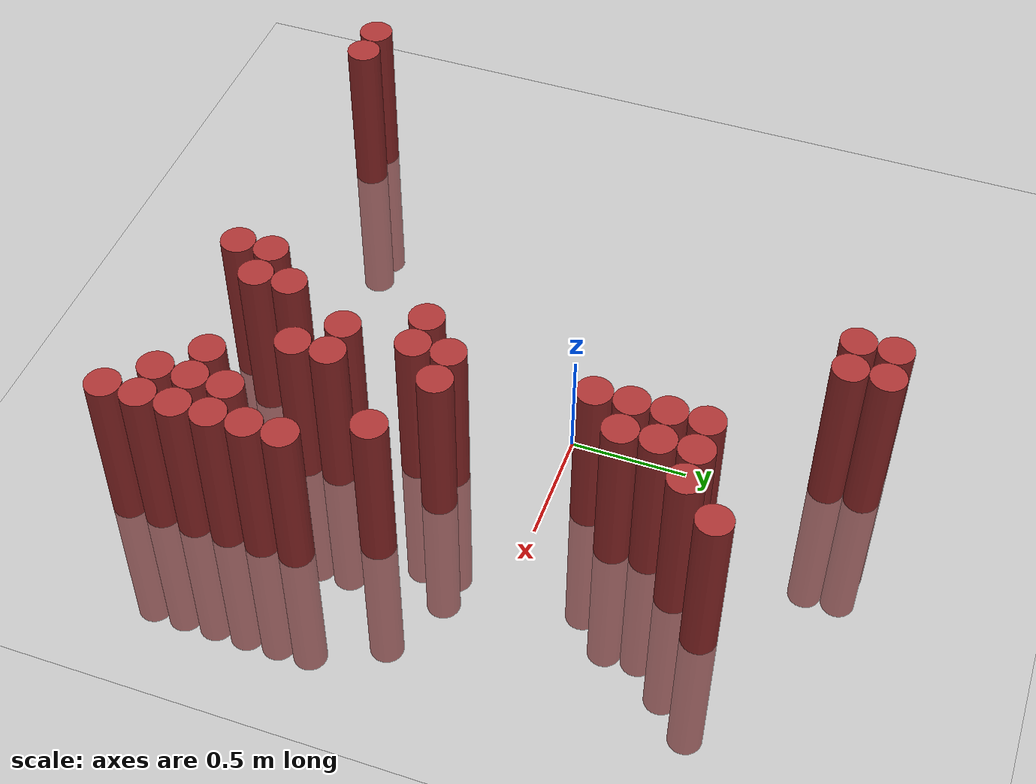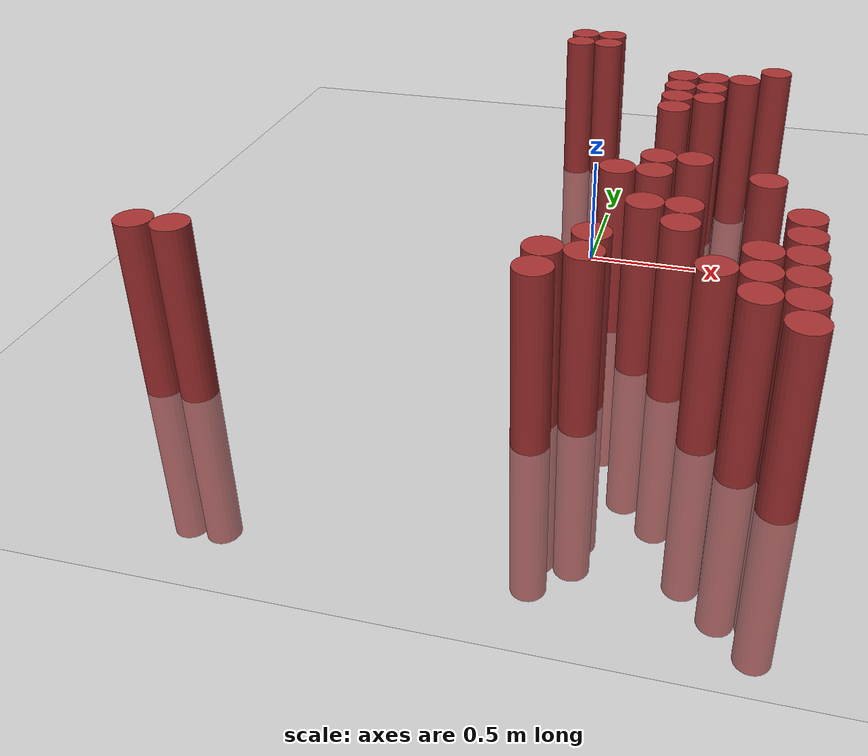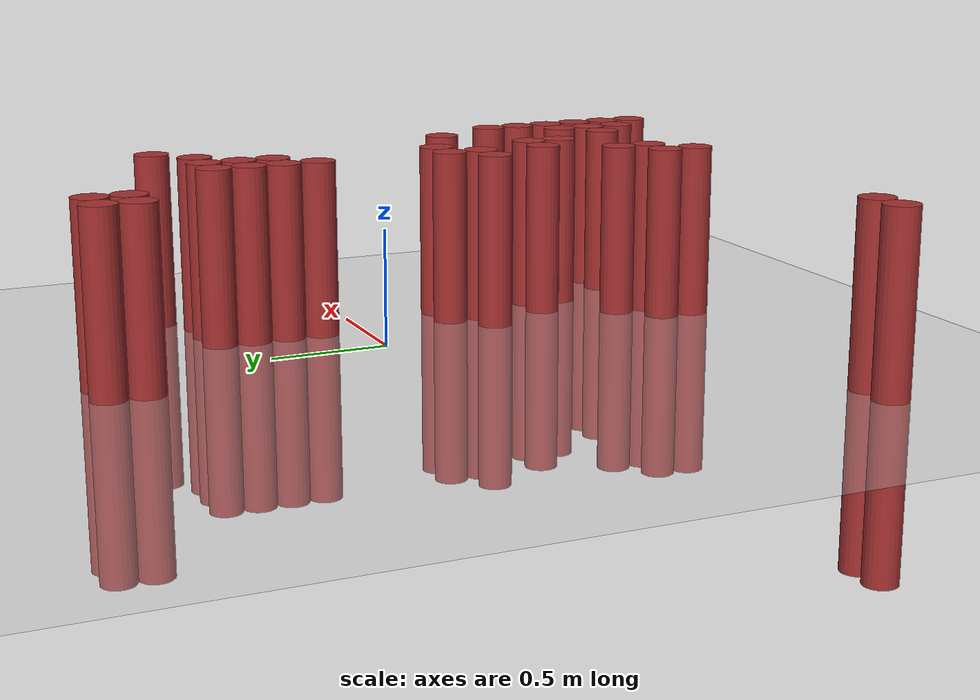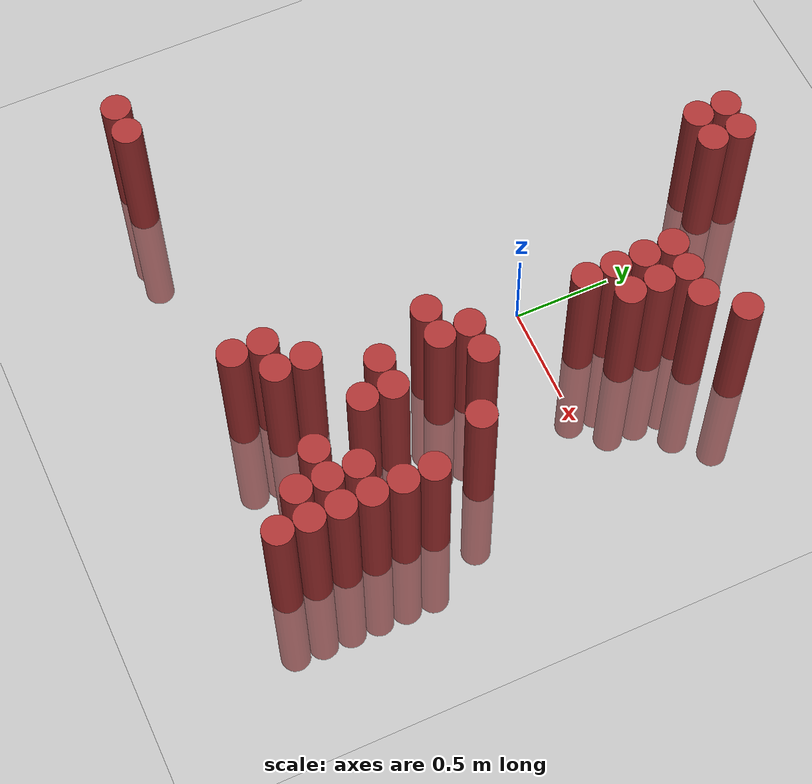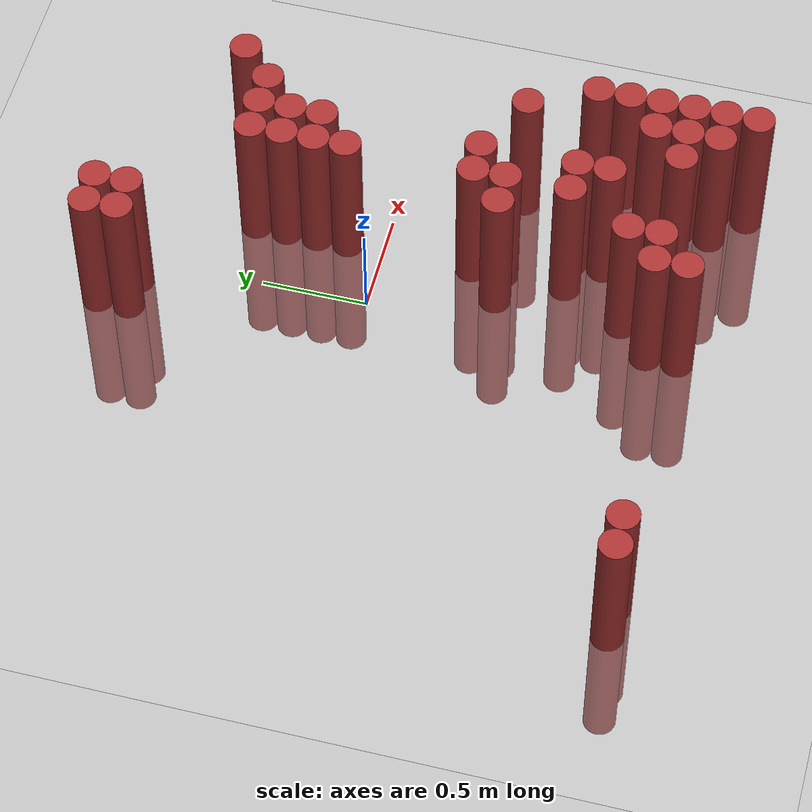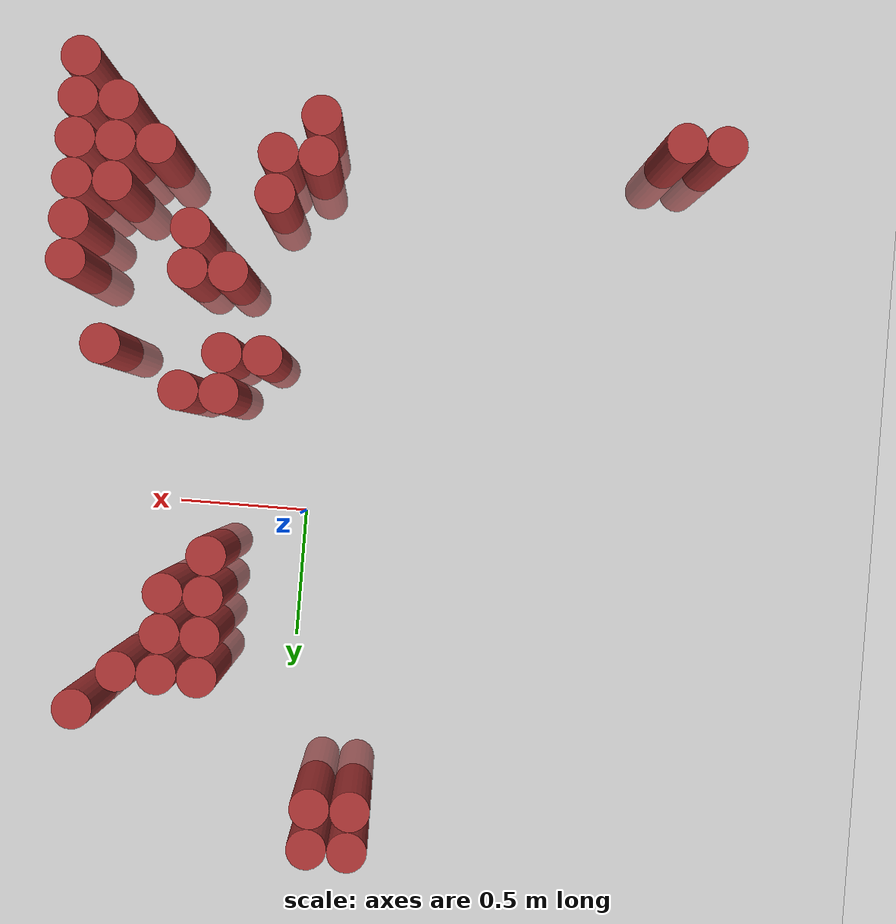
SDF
<sdf version="1.6">
 <world name="default">
  <model name="ground_plane">
   <static>1</static>
   <link name="link">
    <collision name="collision">
     <geometry><plane><normal>0 0 1</normal><size>100 100</size></plane></geometry>
     <surface><friction><ode><mu>100</mu><mu2>50</mu2></ode></friction></surface>
    </collision>
    <visual name="visual">
     <cast_shadows>0</cast_shadows>
     <geometry><plane><normal>0 0 1</normal><size>100 100</size></plane></geometry>
     <material>
      <script><uri>file://media/materials/scripts/gazebo.material</uri><name>Gazebo/Grey</name></script>
     </material>
    </visual>
   </link>
  </model>
  <model name="unit_cylinder_344">
   <static>1</static>
   <pose>-1.475000 -1.475000 0.000000 0.000000 0.000000 0.000000</pose>
   <link name="link">
    <inertial>
     <mass>1</mass>
     <inertia><ixx>0.145833</ixx><ixy>0</ixy><ixz>0</ixz><iyy>0.145833</iyy><iyz>0</iyz><izz>0.125</izz></inertia>
    </inertial>
    <collision name="collision">
     <geometry><cylinder><radius>0.075000</radius><length>1.5</length></cylinder></geometry>
    </collision>
    <visual name="visual">
     <geometry><cylinder><radius>0.075000</radius><length>1.5</length></cylinder></geometry>
     <material>
      <ambient>0.648000 0.192000 0.192000 1</ambient>
      <diffuse>0.648000 0.192000 0.192000 1</diffuse>
     </material>
     <material>
      <script><name>Gazebo/Grey</name><uri>file://media/materials/scripts/gazebo.material</uri></script>
     </material>
    </visual>
   </link>
  </model>
  <model name="unit_cylinder_345">
   <static>1</static>
   <pose>-1.325000 -1.475000 0.000000 0.000000 0.000000 0.000000</pose>
   <link name="link">
    <inertial>
     <mass>1</mass>
     <inertia><ixx>0.145833</ixx><ixy>0</ixy><ixz>0</ixz><iyy>0.145833</iyy><iyz>0</iyz><izz>0.125</izz></inertia>
    </inertial>
    <collision name="collision">
     <geometry><cylinder><radius>0.075000</radius><length>1.5</length></cylinder></geometry>
    </collision>
    <visual name="visual">
     <geometry><cylinder><radius>0.075000</radius><length>1.5</length></cylinder></geometry>
     <material>
      <ambient>0.648000 0.192000 0.192000 1</ambient>
      <diffuse>0.648000 0.192000 0.192000 1</diffuse>
     </material>
     <material>
      <script><name>Gazebo/Grey</name><uri>file://media/materials/scripts/gazebo.material</uri></script>
     </material>
    </visual>
   </link>
  </model>
  <model name="unit_cylinder_356">
   <static>1</static>
   <pose>-0.275000 1.075000 0.000000 0.000000 0.000000 0.000000</pose>
   <link name="link">
    <inertial>
     <mass>1</mass>
     <inertia><ixx>0.145833</ixx><ixy>0</ixy><ixz>0</ixz><iyy>0.145833</iyy><iyz>0</iyz><izz>0.125</izz></inertia>
    </inertial>
    <collision name="collision">
     <geometry><cylinder><radius>0.075000</radius><length>1.5</length></cylinder></geometry>
    </collision>
    <visual name="visual">
     <geometry><cylinder><radius>0.075000</radius><length>1.5</length></cylinder></geometry>
     <material>
      <ambient>0.648000 0.192000 0.192000 1</ambient>
      <diffuse>0.648000 0.192000 0.192000 1</diffuse>
     </material>
     <material>
      <script><name>Gazebo/Grey</name><uri>file://media/materials/scripts/gazebo.material</uri></script>
     </material>
    </visual>
   </link>
  </model>
  <model name="unit_cylinder_357">
   <static>1</static>
   <pose>-0.275000 1.225000 0.000000 0.000000 0.000000 0.000000</pose>
   <link name="link">
    <inertial>
     <mass>1</mass>
     <inertia><ixx>0.145833</ixx><ixy>0</ixy><ixz>0</ixz><iyy>0.145833</iyy><iyz>0</iyz><izz>0.125</izz></inertia>
    </inertial>
    <collision name="collision">
     <geometry><cylinder><radius>0.075000</radius><length>1.5</length></cylinder></geometry>
    </collision>
    <visual name="visual">
     <geometry><cylinder><radius>0.075000</radius><length>1.5</length></cylinder></geometry>
     <material>
      <ambient>0.648000 0.192000 0.192000 1</ambient>
      <diffuse>0.648000 0.192000 0.192000 1</diffuse>
     </material>
     <material>
      <script><name>Gazebo/Grey</name><uri>file://media/materials/scripts/gazebo.material</uri></script>
     </material>
    </visual>
   </link>
  </model>
  <model name="unit_cylinder_363">
   <static>1</static>
   <pose>-0.125000 1.075000 0.000000 0.000000 0.000000 0.000000</pose>
   <link name="link">
    <inertial>
     <mass>1</mass>
     <inertia><ixx>0.145833</ixx><ixy>0</ixy><ixz>0</ixz><iyy>0.145833</iyy><iyz>0</iyz><izz>0.125</izz></inertia>
    </inertial>
    <collision name="collision">
     <geometry><cylinder><radius>0.075000</radius><length>1.5</length></cylinder></geometry>
    </collision>
    <visual name="visual">
     <geometry><cylinder><radius>0.075000</radius><length>1.5</length></cylinder></geometry>
     <material>
      <ambient>0.648000 0.192000 0.192000 1</ambient>
      <diffuse>0.648000 0.192000 0.192000 1</diffuse>
     </material>
     <material>
      <script><name>Gazebo/Grey</name><uri>file://media/materials/scripts/gazebo.material</uri></script>
     </material>
    </visual>
   </link>
  </model>
  <model name="unit_cylinder_364">
   <static>1</static>
   <pose>-0.125000 1.225000 0.000000 0.000000 0.000000 0.000000</pose>
   <link name="link">
    <inertial>
     <mass>1</mass>
     <inertia><ixx>0.145833</ixx><ixy>0</ixy><ixz>0</ixz><iyy>0.145833</iyy><iyz>0</iyz><izz>0.125</izz></inertia>
    </inertial>
    <collision name="collision">
     <geometry><cylinder><radius>0.075000</radius><length>1.5</length></cylinder></geometry>
    </collision>
    <visual name="visual">
     <geometry><cylinder><radius>0.075000</radius><length>1.5</length></cylinder></geometry>
     <material>
      <ambient>0.648000 0.192000 0.192000 1</ambient>
      <diffuse>0.648000 0.192000 0.192000 1</diffuse>
     </material>
     <material>
      <script><name>Gazebo/Grey</name><uri>file://media/materials/scripts/gazebo.material</uri></script>
     </material>
    </visual>
   </link>
  </model>
  <model name="unit_cylinder_371">
   <static>1</static>
   <pose>0.025000 -1.475000 0.000000 0.000000 0.000000 0.000000</pose>
   <link name="link">
    <inertial>
     <mass>1</mass>
     <inertia><ixx>0.145833</ixx><ixy>0</ixy><ixz>0</ixz><iyy>0.145833</iyy><iyz>0</iyz><izz>0.125</izz></inertia>
    </inertial>
    <collision name="collision">
     <geometry><cylinder><radius>0.075000</radius><length>1.5</length></cylinder></geometry>
    </collision>
    <visual name="visual">
     <geometry><cylinder><radius>0.075000</radius><length>1.5</length></cylinder></geometry>
     <material>
      <ambient>0.648000 0.192000 0.192000 1</ambient>
      <diffuse>0.648000 0.192000 0.192000 1</diffuse>
     </material>
     <material>
      <script><name>Gazebo/Grey</name><uri>file://media/materials/scripts/gazebo.material</uri></script>
     </material>
    </visual>
   </link>
  </model>
  <model name="unit_cylinder_372">
   <static>1</static>
   <pose>0.025000 -1.325000 0.000000 0.000000 0.000000 0.000000</pose>
   <link name="link">
    <inertial>
     <mass>1</mass>
     <inertia><ixx>0.145833</ixx><ixy>0</ixy><ixz>0</ixz><iyy>0.145833</iyy><iyz>0</iyz><izz>0.125</izz></inertia>
    </inertial>
    <collision name="collision">
     <geometry><cylinder><radius>0.075000</radius><length>1.5</length></cylinder></geometry>
    </collision>
    <visual name="visual">
     <geometry><cylinder><radius>0.075000</radius><length>1.5</length></cylinder></geometry>
     <material>
      <ambient>0.648000 0.192000 0.192000 1</ambient>
      <diffuse>0.648000 0.192000 0.192000 1</diffuse>
     </material>
     <material>
      <script><name>Gazebo/Grey</name><uri>file://media/materials/scripts/gazebo.material</uri></script>
     </material>
    </visual>
   </link>
  </model>
  <model name="unit_cylinder_376">
   <static>1</static>
   <pose>0.175000 -1.325000 0.000000 0.000000 0.000000 0.000000</pose>
   <link name="link">
    <inertial>
     <mass>1</mass>
     <inertia><ixx>0.145833</ixx><ixy>0</ixy><ixz>0</ixz><iyy>0.145833</iyy><iyz>0</iyz><izz>0.125</izz></inertia>
    </inertial>
    <collision name="collision">
     <geometry><cylinder><radius>0.075000</radius><length>1.5</length></cylinder></geometry>
    </collision>
    <visual name="visual">
     <geometry><cylinder><radius>0.075000</radius><length>1.5</length></cylinder></geometry>
     <material>
      <ambient>0.648000 0.192000 0.192000 1</ambient>
      <diffuse>0.648000 0.192000 0.192000 1</diffuse>
     </material>
     <material>
      <script><name>Gazebo/Grey</name><uri>file://media/materials/scripts/gazebo.material</uri></script>
     </material>
    </visual>
   </link>
  </model>
  <model name="unit_cylinder_377">
   <static>1</static>
   <pose>0.175000 -1.175000 0.000000 0.000000 0.000000 0.000000</pose>
   <link name="link">
    <inertial>
     <mass>1</mass>
     <inertia><ixx>0.145833</ixx><ixy>0</ixy><ixz>0</ixz><iyy>0.145833</iyy><iyz>0</iyz><izz>0.125</izz></inertia>
    </inertial>
    <collision name="collision">
     <geometry><cylinder><radius>0.075000</radius><length>1.5</length></cylinder></geometry>
    </collision>
    <visual name="visual">
     <geometry><cylinder><radius>0.075000</radius><length>1.5</length></cylinder></geometry>
     <material>
      <ambient>0.648000 0.192000 0.192000 1</ambient>
      <diffuse>0.648000 0.192000 0.192000 1</diffuse>
     </material>
     <material>
      <script><name>Gazebo/Grey</name><uri>file://media/materials/scripts/gazebo.material</uri></script>
     </material>
    </visual>
   </link>
  </model>
  <model name="unit_cylinder_378">
   <static>1</static>
   <pose>0.175000 -0.575000 0.000000 0.000000 0.000000 0.000000</pose>
   <link name="link">
    <inertial>
     <mass>1</mass>
     <inertia><ixx>0.145833</ixx><ixy>0</ixy><ixz>0</ixz><iyy>0.145833</iyy><iyz>0</iyz><izz>0.125</izz></inertia>
    </inertial>
    <collision name="collision">
     <geometry><cylinder><radius>0.075000</radius><length>1.5</length></cylinder></geometry>
    </collision>
    <visual name="visual">
     <geometry><cylinder><radius>0.075000</radius><length>1.5</length></cylinder></geometry>
     <material>
      <ambient>0.648000 0.192000 0.192000 1</ambient>
      <diffuse>0.648000 0.192000 0.192000 1</diffuse>
     </material>
     <material>
      <script><name>Gazebo/Grey</name><uri>file://media/materials/scripts/gazebo.material</uri></script>
     </material>
    </visual>
   </link>
  </model>
  <model name="unit_cylinder_382">
   <static>1</static>
   <pose>0.325000 -0.875000 0.000000 0.000000 0.000000 0.000000</pose>
   <link name="link">
    <inertial>
     <mass>1</mass>
     <inertia><ixx>0.145833</ixx><ixy>0</ixy><ixz>0</ixz><iyy>0.145833</iyy><iyz>0</iyz><izz>0.125</izz></inertia>
    </inertial>
    <collision name="collision">
     <geometry><cylinder><radius>0.075000</radius><length>1.5</length></cylinder></geometry>
    </collision>
    <visual name="visual">
     <geometry><cylinder><radius>0.075000</radius><length>1.5</length></cylinder></geometry>
     <material>
      <ambient>0.648000 0.192000 0.192000 1</ambient>
      <diffuse>0.648000 0.192000 0.192000 1</diffuse>
     </material>
     <material>
      <script><name>Gazebo/Grey</name><uri>file://media/materials/scripts/gazebo.material</uri></script>
     </material>
    </visual>
   </link>
  </model>
  <model name="unit_cylinder_383">
   <static>1</static>
   <pose>0.325000 -0.575000 0.000000 0.000000 0.000000 0.000000</pose>
   <link name="link">
    <inertial>
     <mass>1</mass>
     <inertia><ixx>0.145833</ixx><ixy>0</ixy><ixz>0</ixz><iyy>0.145833</iyy><iyz>0</iyz><izz>0.125</izz></inertia>
    </inertial>
    <collision name="collision">
     <geometry><cylinder><radius>0.075000</radius><length>1.5</length></cylinder></geometry>
    </collision>
    <visual name="visual">
     <geometry><cylinder><radius>0.075000</radius><length>1.5</length></cylinder></geometry>
     <material>
      <ambient>0.648000 0.192000 0.192000 1</ambient>
      <diffuse>0.648000 0.192000 0.192000 1</diffuse>
     </material>
     <material>
      <script><name>Gazebo/Grey</name><uri>file://media/materials/scripts/gazebo.material</uri></script>
     </material>
    </visual>
   </link>
  </model>
  <model name="unit_cylinder_384">
   <static>1</static>
   <pose>0.325000 -0.425000 0.000000 0.000000 0.000000 0.000000</pose>
   <link name="link">
    <inertial>
     <mass>1</mass>
     <inertia><ixx>0.145833</ixx><ixy>0</ixy><ixz>0</ixz><iyy>0.145833</iyy><iyz>0</iyz><izz>0.125</izz></inertia>
    </inertial>
    <collision name="collision">
     <geometry><cylinder><radius>0.075000</radius><length>1.5</length></cylinder></geometry>
    </collision>
    <visual name="visual">
     <geometry><cylinder><radius>0.075000</radius><length>1.5</length></cylinder></geometry>
     <material>
      <ambient>0.648000 0.192000 0.192000 1</ambient>
      <diffuse>0.648000 0.192000 0.192000 1</diffuse>
     </material>
     <material>
      <script><name>Gazebo/Grey</name><uri>file://media/materials/scripts/gazebo.material</uri></script>
     </material>
    </visual>
   </link>
  </model>
  <model name="unit_cylinder_385">
   <static>1</static>
   <pose>0.325000 0.175000 0.000000 0.000000 0.000000 0.000000</pose>
   <link name="link">
    <inertial>
     <mass>1</mass>
     <inertia><ixx>0.145833</ixx><ixy>0</ixy><ixz>0</ixz><iyy>0.145833</iyy><iyz>0</iyz><izz>0.125</izz></inertia>
    </inertial>
    <collision name="collision">
     <geometry><cylinder><radius>0.075000</radius><length>1.5</length></cylinder></geometry>
    </collision>
    <visual name="visual">
     <geometry><cylinder><radius>0.075000</radius><length>1.5</length></cylinder></geometry>
     <material>
      <ambient>0.648000 0.192000 0.192000 1</ambient>
      <diffuse>0.648000 0.192000 0.192000 1</diffuse>
     </material>
     <material>
      <script><name>Gazebo/Grey</name><uri>file://media/materials/scripts/gazebo.material</uri></script>
     </material>
    </visual>
   </link>
  </model>
  <model name="unit_cylinder_386">
   <static>1</static>
   <pose>0.325000 0.325000 0.000000 0.000000 0.000000 0.000000</pose>
   <link name="link">
    <inertial>
     <mass>1</mass>
     <inertia><ixx>0.145833</ixx><ixy>0</ixy><ixz>0</ixz><iyy>0.145833</iyy><iyz>0</iyz><izz>0.125</izz></inertia>
    </inertial>
    <collision name="collision">
     <geometry><cylinder><radius>0.075000</radius><length>1.5</length></cylinder></geometry>
    </collision>
    <visual name="visual">
     <geometry><cylinder><radius>0.075000</radius><length>1.5</length></cylinder></geometry>
     <material>
      <ambient>0.648000 0.192000 0.192000 1</ambient>
      <diffuse>0.648000 0.192000 0.192000 1</diffuse>
     </material>
     <material>
      <script><name>Gazebo/Grey</name><uri>file://media/materials/scripts/gazebo.material</uri></script>
     </material>
    </visual>
   </link>
  </model>
  <model name="unit_cylinder_387">
   <static>1</static>
   <pose>0.325000 0.475000 0.000000 0.000000 0.000000 0.000000</pose>
   <link name="link">
    <inertial>
     <mass>1</mass>
     <inertia><ixx>0.145833</ixx><ixy>0</ixy><ixz>0</ixz><iyy>0.145833</iyy><iyz>0</iyz><izz>0.125</izz></inertia>
    </inertial>
    <collision name="collision">
     <geometry><cylinder><radius>0.075000</radius><length>1.5</length></cylinder></geometry>
    </collision>
    <visual name="visual">
     <geometry><cylinder><radius>0.075000</radius><length>1.5</length></cylinder></geometry>
     <material>
      <ambient>0.648000 0.192000 0.192000 1</ambient>
      <diffuse>0.648000 0.192000 0.192000 1</diffuse>
     </material>
     <material>
      <script><name>Gazebo/Grey</name><uri>file://media/materials/scripts/gazebo.material</uri></script>
     </material>
    </visual>
   </link>
  </model>
  <model name="unit_cylinder_388">
   <static>1</static>
   <pose>0.325000 0.625000 0.000000 0.000000 0.000000 0.000000</pose>
   <link name="link">
    <inertial>
     <mass>1</mass>
     <inertia><ixx>0.145833</ixx><ixy>0</ixy><ixz>0</ixz><iyy>0.145833</iyy><iyz>0</iyz><izz>0.125</izz></inertia>
    </inertial>
    <collision name="collision">
     <geometry><cylinder><radius>0.075000</radius><length>1.5</length></cylinder></geometry>
    </collision>
    <visual name="visual">
     <geometry><cylinder><radius>0.075000</radius><length>1.5</length></cylinder></geometry>
     <material>
      <ambient>0.648000 0.192000 0.192000 1</ambient>
      <diffuse>0.648000 0.192000 0.192000 1</diffuse>
     </material>
     <material>
      <script><name>Gazebo/Grey</name><uri>file://media/materials/scripts/gazebo.material</uri></script>
     </material>
    </visual>
   </link>
  </model>
  <model name="unit_cylinder_393">
   <static>1</static>
   <pose>0.475000 -1.025000 0.000000 0.000000 0.000000 0.000000</pose>
   <link name="link">
    <inertial>
     <mass>1</mass>
     <inertia><ixx>0.145833</ixx><ixy>0</ixy><ixz>0</ixz><iyy>0.145833</iyy><iyz>0</iyz><izz>0.125</izz></inertia>
    </inertial>
    <collision name="collision">
     <geometry><cylinder><radius>0.075000</radius><length>1.5</length></cylinder></geometry>
    </collision>
    <visual name="visual">
     <geometry><cylinder><radius>0.075000</radius><length>1.5</length></cylinder></geometry>
     <material>
      <ambient>0.648000 0.192000 0.192000 1</ambient>
      <diffuse>0.648000 0.192000 0.192000 1</diffuse>
     </material>
     <material>
      <script><name>Gazebo/Grey</name><uri>file://media/materials/scripts/gazebo.material</uri></script>
     </material>
    </visual>
   </link>
  </model>
  <model name="unit_cylinder_394">
   <static>1</static>
   <pose>0.475000 -0.875000 0.000000 0.000000 0.000000 0.000000</pose>
   <link name="link">
    <inertial>
     <mass>1</mass>
     <inertia><ixx>0.145833</ixx><ixy>0</ixy><ixz>0</ixz><iyy>0.145833</iyy><iyz>0</iyz><izz>0.125</izz></inertia>
    </inertial>
    <collision name="collision">
     <geometry><cylinder><radius>0.075000</radius><length>1.5</length></cylinder></geometry>
    </collision>
    <visual name="visual">
     <geometry><cylinder><radius>0.075000</radius><length>1.5</length></cylinder></geometry>
     <material>
      <ambient>0.648000 0.192000 0.192000 1</ambient>
      <diffuse>0.648000 0.192000 0.192000 1</diffuse>
     </material>
     <material>
      <script><name>Gazebo/Grey</name><uri>file://media/materials/scripts/gazebo.material</uri></script>
     </material>
    </visual>
   </link>
  </model>
  <model name="unit_cylinder_395">
   <static>1</static>
   <pose>0.475000 -0.425000 0.000000 0.000000 0.000000 0.000000</pose>
   <link name="link">
    <inertial>
     <mass>1</mass>
     <inertia><ixx>0.145833</ixx><ixy>0</ixy><ixz>0</ixz><iyy>0.145833</iyy><iyz>0</iyz><izz>0.125</izz></inertia>
    </inertial>
    <collision name="collision">
     <geometry><cylinder><radius>0.075000</radius><length>1.5</length></cylinder></geometry>
    </collision>
    <visual name="visual">
     <geometry><cylinder><radius>0.075000</radius><length>1.5</length></cylinder></geometry>
     <material>
      <ambient>0.648000 0.192000 0.192000 1</ambient>
      <diffuse>0.648000 0.192000 0.192000 1</diffuse>
     </material>
     <material>
      <script><name>Gazebo/Grey</name><uri>file://media/materials/scripts/gazebo.material</uri></script>
     </material>
    </visual>
   </link>
  </model>
  <model name="unit_cylinder_396">
   <static>1</static>
   <pose>0.475000 0.325000 0.000000 0.000000 0.000000 0.000000</pose>
   <link name="link">
    <inertial>
     <mass>1</mass>
     <inertia><ixx>0.145833</ixx><ixy>0</ixy><ixz>0</ixz><iyy>0.145833</iyy><iyz>0</iyz><izz>0.125</izz></inertia>
    </inertial>
    <collision name="collision">
     <geometry><cylinder><radius>0.075000</radius><length>1.5</length></cylinder></geometry>
    </collision>
    <visual name="visual">
     <geometry><cylinder><radius>0.075000</radius><length>1.5</length></cylinder></geometry>
     <material>
      <ambient>0.648000 0.192000 0.192000 1</ambient>
      <diffuse>0.648000 0.192000 0.192000 1</diffuse>
     </material>
     <material>
      <script><name>Gazebo/Grey</name><uri>file://media/materials/scripts/gazebo.material</uri></script>
     </material>
    </visual>
   </link>
  </model>
  <model name="unit_cylinder_397">
   <static>1</static>
   <pose>0.475000 0.475000 0.000000 0.000000 0.000000 0.000000</pose>
   <link name="link">
    <inertial>
     <mass>1</mass>
     <inertia><ixx>0.145833</ixx><ixy>0</ixy><ixz>0</ixz><iyy>0.145833</iyy><iyz>0</iyz><izz>0.125</izz></inertia>
    </inertial>
    <collision name="collision">
     <geometry><cylinder><radius>0.075000</radius><length>1.5</length></cylinder></geometry>
    </collision>
    <visual name="visual">
     <geometry><cylinder><radius>0.075000</radius><length>1.5</length></cylinder></geometry>
     <material>
      <ambient>0.648000 0.192000 0.192000 1</ambient>
      <diffuse>0.648000 0.192000 0.192000 1</diffuse>
     </material>
     <material>
      <script><name>Gazebo/Grey</name><uri>file://media/materials/scripts/gazebo.material</uri></script>
     </material>
    </visual>
   </link>
  </model>
  <model name="unit_cylinder_398">
   <static>1</static>
   <pose>0.475000 0.625000 0.000000 0.000000 0.000000 0.000000</pose>
   <link name="link">
    <inertial>
     <mass>1</mass>
     <inertia><ixx>0.145833</ixx><ixy>0</ixy><ixz>0</ixz><iyy>0.145833</iyy><iyz>0</iyz><izz>0.125</izz></inertia>
    </inertial>
    <collision name="collision">
     <geometry><cylinder><radius>0.075000</radius><length>1.5</length></cylinder></geometry>
    </collision>
    <visual name="visual">
     <geometry><cylinder><radius>0.075000</radius><length>1.5</length></cylinder></geometry>
     <material>
      <ambient>0.648000 0.192000 0.192000 1</ambient>
      <diffuse>0.648000 0.192000 0.192000 1</diffuse>
     </material>
     <material>
      <script><name>Gazebo/Grey</name><uri>file://media/materials/scripts/gazebo.material</uri></script>
     </material>
    </visual>
   </link>
  </model>
  <model name="unit_cylinder_405">
   <static>1</static>
   <pose>0.625000 -1.325000 0.000000 0.000000 0.000000 0.000000</pose>
   <link name="link">
    <inertial>
     <mass>1</mass>
     <inertia><ixx>0.145833</ixx><ixy>0</ixy><ixz>0</ixz><iyy>0.145833</iyy><iyz>0</iyz><izz>0.125</izz></inertia>
    </inertial>
    <collision name="collision">
     <geometry><cylinder><radius>0.075000</radius><length>1.5</length></cylinder></geometry>
    </collision>
    <visual name="visual">
     <geometry><cylinder><radius>0.075000</radius><length>1.5</length></cylinder></geometry>
     <material>
      <ambient>0.648000 0.192000 0.192000 1</ambient>
      <diffuse>0.648000 0.192000 0.192000 1</diffuse>
     </material>
     <material>
      <script><name>Gazebo/Grey</name><uri>file://media/materials/scripts/gazebo.material</uri></script>
     </material>
    </visual>
   </link>
  </model>
  <model name="unit_cylinder_406">
   <static>1</static>
   <pose>0.625000 0.625000 0.000000 0.000000 0.000000 0.000000</pose>
   <link name="link">
    <inertial>
     <mass>1</mass>
     <inertia><ixx>0.145833</ixx><ixy>0</ixy><ixz>0</ixz><iyy>0.145833</iyy><iyz>0</iyz><izz>0.125</izz></inertia>
    </inertial>
    <collision name="collision">
     <geometry><cylinder><radius>0.075000</radius><length>1.5</length></cylinder></geometry>
    </collision>
    <visual name="visual">
     <geometry><cylinder><radius>0.075000</radius><length>1.5</length></cylinder></geometry>
     <material>
      <ambient>0.648000 0.192000 0.192000 1</ambient>
      <diffuse>0.648000 0.192000 0.192000 1</diffuse>
     </material>
     <material>
      <script><name>Gazebo/Grey</name><uri>file://media/materials/scripts/gazebo.material</uri></script>
     </material>
    </visual>
   </link>
  </model>
  <model name="unit_cylinder_410">
   <static>1</static>
   <pose>0.775000 -1.475000 0.000000 0.000000 0.000000 0.000000</pose>
   <link name="link">
    <inertial>
     <mass>1</mass>
     <inertia><ixx>0.145833</ixx><ixy>0</ixy><ixz>0</ixz><iyy>0.145833</iyy><iyz>0</iyz><izz>0.125</izz></inertia>
    </inertial>
    <collision name="collision">
     <geometry><cylinder><radius>0.075000</radius><length>1.5</length></cylinder></geometry>
    </collision>
    <visual name="visual">
     <geometry><cylinder><radius>0.075000</radius><length>1.5</length></cylinder></geometry>
     <material>
      <ambient>0.648000 0.192000 0.192000 1</ambient>
      <diffuse>0.648000 0.192000 0.192000 1</diffuse>
     </material>
     <material>
      <script><name>Gazebo/Grey</name><uri>file://media/materials/scripts/gazebo.material</uri></script>
     </material>
    </visual>
   </link>
  </model>
  <model name="unit_cylinder_411">
   <static>1</static>
   <pose>0.775000 -1.325000 0.000000 0.000000 0.000000 0.000000</pose>
   <link name="link">
    <inertial>
     <mass>1</mass>
     <inertia><ixx>0.145833</ixx><ixy>0</ixy><ixz>0</ixz><iyy>0.145833</iyy><iyz>0</iyz><izz>0.125</izz></inertia>
    </inertial>
    <collision name="collision">
     <geometry><cylinder><radius>0.075000</radius><length>1.5</length></cylinder></geometry>
    </collision>
    <visual name="visual">
     <geometry><cylinder><radius>0.075000</radius><length>1.5</length></cylinder></geometry>
     <material>
      <ambient>0.648000 0.192000 0.192000 1</ambient>
      <diffuse>0.648000 0.192000 0.192000 1</diffuse>
     </material>
     <material>
      <script><name>Gazebo/Grey</name><uri>file://media/materials/scripts/gazebo.material</uri></script>
     </material>
    </visual>
   </link>
  </model>
  <model name="unit_cylinder_412">
   <static>1</static>
   <pose>0.775000 -1.175000 0.000000 0.000000 0.000000 0.000000</pose>
   <link name="link">
    <inertial>
     <mass>1</mass>
     <inertia><ixx>0.145833</ixx><ixy>0</ixy><ixz>0</ixz><iyy>0.145833</iyy><iyz>0</iyz><izz>0.125</izz></inertia>
    </inertial>
    <collision name="collision">
     <geometry><cylinder><radius>0.075000</radius><length>1.5</length></cylinder></geometry>
    </collision>
    <visual name="visual">
     <geometry><cylinder><radius>0.075000</radius><length>1.5</length></cylinder></geometry>
     <material>
      <ambient>0.648000 0.192000 0.192000 1</ambient>
      <diffuse>0.648000 0.192000 0.192000 1</diffuse>
     </material>
     <material>
      <script><name>Gazebo/Grey</name><uri>file://media/materials/scripts/gazebo.material</uri></script>
     </material>
    </visual>
   </link>
  </model>
  <model name="unit_cylinder_413">
   <static>1</static>
   <pose>0.775000 -0.575000 0.000000 0.000000 0.000000 0.000000</pose>
   <link name="link">
    <inertial>
     <mass>1</mass>
     <inertia><ixx>0.145833</ixx><ixy>0</ixy><ixz>0</ixz><iyy>0.145833</iyy><iyz>0</iyz><izz>0.125</izz></inertia>
    </inertial>
    <collision name="collision">
     <geometry><cylinder><radius>0.075000</radius><length>1.5</length></cylinder></geometry>
    </collision>
    <visual name="visual">
     <geometry><cylinder><radius>0.075000</radius><length>1.5</length></cylinder></geometry>
     <material>
      <ambient>0.648000 0.192000 0.192000 1</ambient>
      <diffuse>0.648000 0.192000 0.192000 1</diffuse>
     </material>
     <material>
      <script><name>Gazebo/Grey</name><uri>file://media/materials/scripts/gazebo.material</uri></script>
     </material>
    </visual>
   </link>
  </model>
  <model name="unit_cylinder_414">
   <static>1</static>
   <pose>0.775000 0.775000 0.000000 0.000000 0.000000 0.000000</pose>
   <link name="link">
    <inertial>
     <mass>1</mass>
     <inertia><ixx>0.145833</ixx><ixy>0</ixy><ixz>0</ixz><iyy>0.145833</iyy><iyz>0</iyz><izz>0.125</izz></inertia>
    </inertial>
    <collision name="collision">
     <geometry><cylinder><radius>0.075000</radius><length>1.5</length></cylinder></geometry>
    </collision>
    <visual name="visual">
     <geometry><cylinder><radius>0.075000</radius><length>1.5</length></cylinder></geometry>
     <material>
      <ambient>0.648000 0.192000 0.192000 1</ambient>
      <diffuse>0.648000 0.192000 0.192000 1</diffuse>
     </material>
     <material>
      <script><name>Gazebo/Grey</name><uri>file://media/materials/scripts/gazebo.material</uri></script>
     </material>
    </visual>
   </link>
  </model>
  <model name="unit_cylinder_421">
   <static>1</static>
   <pose>0.925000 -1.625000 0.000000 0.000000 0.000000 0.000000</pose>
   <link name="link">
    <inertial>
     <mass>1</mass>
     <inertia><ixx>0.145833</ixx><ixy>0</ixy><ixz>0</ixz><iyy>0.145833</iyy><iyz>0</iyz><izz>0.125</izz></inertia>
    </inertial>
    <collision name="collision">
     <geometry><cylinder><radius>0.075000</radius><length>1.5</length></cylinder></geometry>
    </collision>
    <visual name="visual">
     <geometry><cylinder><radius>0.075000</radius><length>1.5</length></cylinder></geometry>
     <material>
      <ambient>0.648000 0.192000 0.192000 1</ambient>
      <diffuse>0.648000 0.192000 0.192000 1</diffuse>
     </material>
     <material>
      <script><name>Gazebo/Grey</name><uri>file://media/materials/scripts/gazebo.material</uri></script>
     </material>
    </visual>
   </link>
  </model>
  <model name="unit_cylinder_422">
   <static>1</static>
   <pose>0.925000 -1.475000 0.000000 0.000000 0.000000 0.000000</pose>
   <link name="link">
    <inertial>
     <mass>1</mass>
     <inertia><ixx>0.145833</ixx><ixy>0</ixy><ixz>0</ixz><iyy>0.145833</iyy><iyz>0</iyz><izz>0.125</izz></inertia>
    </inertial>
    <collision name="collision">
     <geometry><cylinder><radius>0.075000</radius><length>1.5</length></cylinder></geometry>
    </collision>
    <visual name="visual">
     <geometry><cylinder><radius>0.075000</radius><length>1.5</length></cylinder></geometry>
     <material>
      <ambient>0.648000 0.192000 0.192000 1</ambient>
      <diffuse>0.648000 0.192000 0.192000 1</diffuse>
     </material>
     <material>
      <script><name>Gazebo/Grey</name><uri>file://media/materials/scripts/gazebo.material</uri></script>
     </material>
    </visual>
   </link>
  </model>
  <model name="unit_cylinder_423">
   <static>1</static>
   <pose>0.925000 -1.325000 0.000000 0.000000 0.000000 0.000000</pose>
   <link name="link">
    <inertial>
     <mass>1</mass>
     <inertia><ixx>0.145833</ixx><ixy>0</ixy><ixz>0</ixz><iyy>0.145833</iyy><iyz>0</iyz><izz>0.125</izz></inertia>
    </inertial>
    <collision name="collision">
     <geometry><cylinder><radius>0.075000</radius><length>1.5</length></cylinder></geometry>
    </collision>
    <visual name="visual">
     <geometry><cylinder><radius>0.075000</radius><length>1.5</length></cylinder></geometry>
     <material>
      <ambient>0.648000 0.192000 0.192000 1</ambient>
      <diffuse>0.648000 0.192000 0.192000 1</diffuse>
     </material>
     <material>
      <script><name>Gazebo/Grey</name><uri>file://media/materials/scripts/gazebo.material</uri></script>
     </material>
    </visual>
   </link>
  </model>
  <model name="unit_cylinder_424">
   <static>1</static>
   <pose>0.925000 -1.175000 0.000000 0.000000 0.000000 0.000000</pose>
   <link name="link">
    <inertial>
     <mass>1</mass>
     <inertia><ixx>0.145833</ixx><ixy>0</ixy><ixz>0</ixz><iyy>0.145833</iyy><iyz>0</iyz><izz>0.125</izz></inertia>
    </inertial>
    <collision name="collision">
     <geometry><cylinder><radius>0.075000</radius><length>1.5</length></cylinder></geometry>
    </collision>
    <visual name="visual">
     <geometry><cylinder><radius>0.075000</radius><length>1.5</length></cylinder></geometry>
     <material>
      <ambient>0.648000 0.192000 0.192000 1</ambient>
      <diffuse>0.648000 0.192000 0.192000 1</diffuse>
     </material>
     <material>
      <script><name>Gazebo/Grey</name><uri>file://media/materials/scripts/gazebo.material</uri></script>
     </material>
    </visual>
   </link>
  </model>
  <model name="unit_cylinder_425">
   <static>1</static>
   <pose>0.925000 -1.025000 0.000000 0.000000 0.000000 0.000000</pose>
   <link name="link">
    <inertial>
     <mass>1</mass>
     <inertia><ixx>0.145833</ixx><ixy>0</ixy><ixz>0</ixz><iyy>0.145833</iyy><iyz>0</iyz><izz>0.125</izz></inertia>
    </inertial>
    <collision name="collision">
     <geometry><cylinder><radius>0.075000</radius><length>1.5</length></cylinder></geometry>
    </collision>
    <visual name="visual">
     <geometry><cylinder><radius>0.075000</radius><length>1.5</length></cylinder></geometry>
     <material>
      <ambient>0.648000 0.192000 0.192000 1</ambient>
      <diffuse>0.648000 0.192000 0.192000 1</diffuse>
     </material>
     <material>
      <script><name>Gazebo/Grey</name><uri>file://media/materials/scripts/gazebo.material</uri></script>
     </material>
    </visual>
   </link>
  </model>
  <model name="unit_cylinder_426">
   <static>1</static>
   <pose>0.925000 -0.875000 0.000000 0.000000 0.000000 0.000000</pose>
   <link name="link">
    <inertial>
     <mass>1</mass>
     <inertia><ixx>0.145833</ixx><ixy>0</ixy><ixz>0</ixz><iyy>0.145833</iyy><iyz>0</iyz><izz>0.125</izz></inertia>
    </inertial>
    <collision name="collision">
     <geometry><cylinder><radius>0.075000</radius><length>1.5</length></cylinder></geometry>
    </collision>
    <visual name="visual">
     <geometry><cylinder><radius>0.075000</radius><length>1.5</length></cylinder></geometry>
     <material>
      <ambient>0.648000 0.192000 0.192000 1</ambient>
      <diffuse>0.648000 0.192000 0.192000 1</diffuse>
     </material>
     <material>
      <script><name>Gazebo/Grey</name><uri>file://media/materials/scripts/gazebo.material</uri></script>
     </material>
    </visual>
   </link>
  </model>
 </world>
</sdf>
